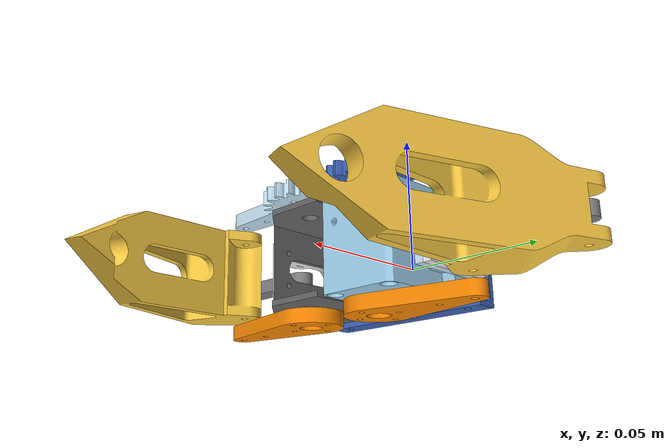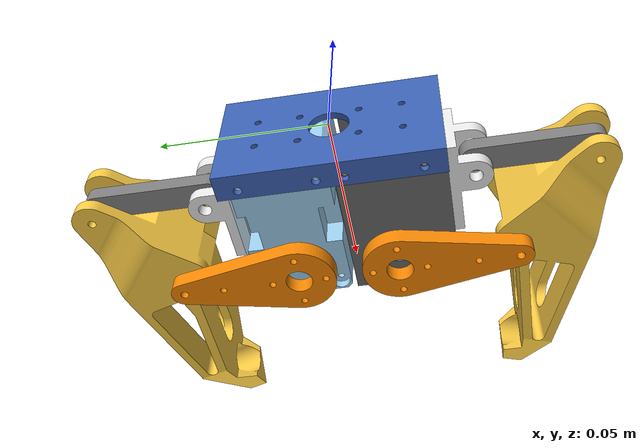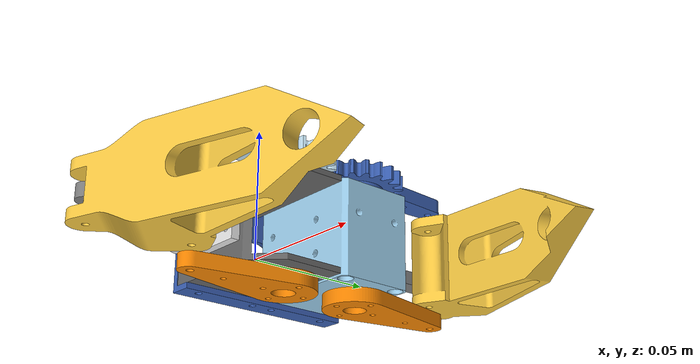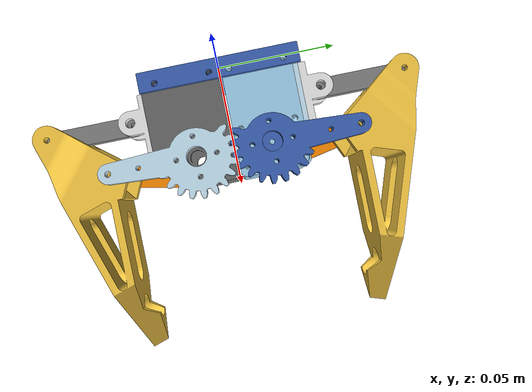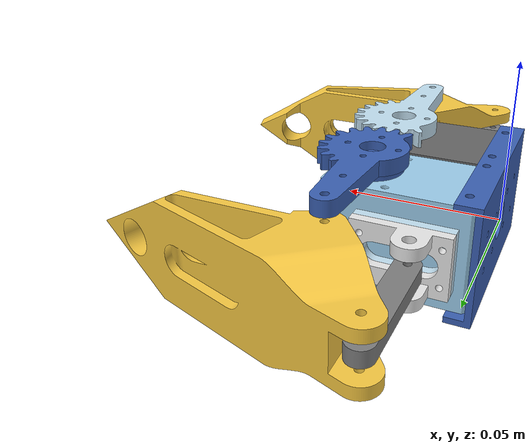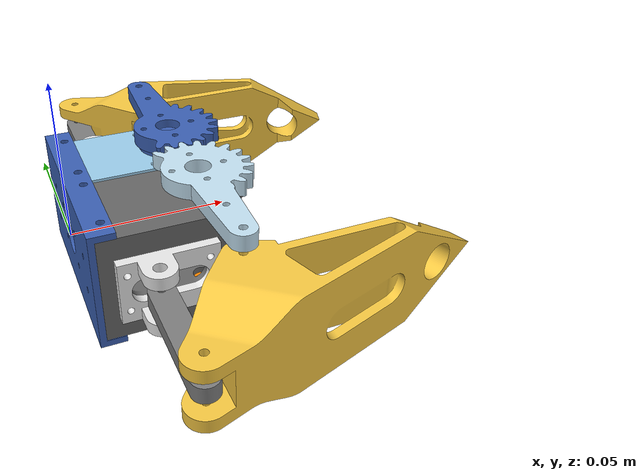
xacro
<?xml version="1.0"?>
<robot name="gripper_stationary" xmlns:xacro="http://www.ros.org/wiki/xacro">
  <xacro:arg name="namespace" default="my_gripper" />

  <xacro:include filename="$(find gripper_description)/urdf/gripper.reusable.xacro" />
  <xacro:mk_parallel_gripper ns="$(arg namespace)" />

  <xacro:include filename="$(find gripper_gazebo)/sdf/gripper_joints_for_sim.reusable.gazebo" />
  <xacro:mk_parallel_gripper_gz_4bar ns="$(arg namespace)" />
  <xacro:mk_parallel_gripper_gz_gearbox_coupling ns="$(arg namespace)" />
  <xacro:gripper_friction_lining ns="$(arg namespace)" prefix="lhs" />
  <xacro:gripper_friction_lining ns="$(arg namespace)" prefix="rhs" />

  <gazebo>
    <plugin name="gazebo_ros_control" filename="libgazebo_ros_control.so">
      <robotNamespace>$(arg namespace)</robotNamespace>
    </plugin>
    <self_collide>true</self_collide>

    <!-- https://answers.ros.org/question/393006/urdf-link-not-properly-fixed-to-world/ -->
    <!-- but it really doesn't work if I apply namespace to the spawner node...??? -->
    <!-- Somehow I discovered the soln below... -->
    <link name="/world" />
    <joint name="$(arg namespace)/gripper2parent" type="fixed">
      <!--this is not urdf any more!-->
      <parent>world</parent>
      <child>$(arg namespace)/base_link</child>
      <!-- specify it in the spawner instead! -->
    </joint>
  </gazebo>
</robot>

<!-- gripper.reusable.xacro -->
<robot name="parallel_link_gripper" xmlns:xacro="http://www.ros.org/wiki/xacro">
  <xacro:macro name="mk_parallel_gripper" params="ns">
    <link name="${ns}/base_link" />
    <joint name="${ns}/base_link_to_base" type="fixed">
      <parent link="${ns}/base_link" />
      <child link="${ns}/body" />
      <origin rpy="0.0 0 0" xyz="0 0 0" />
    </joint>
    <link name="${ns}/body">
      <visual>
        <origin xyz="0.002 2.84109e-20 -0.017" rpy="4.43272e-17 9.56494e-30 -6.02851e-29" />
        <geometry>
          <mesh filename="package://gripper_description/mesh/gripper_mount__list_gggmxkb4ygsnke_default.stl" />
        </geometry>
        <material name="gripper_mount__list_gggmxkb4ygsnke_default_material">
          <color rgba="0.231373 0.380392 0.705882 1.0" />
        </material>
      </visual>
      <collision>
        <origin xyz="0.0205 2.84109e-20 -6.93889e-18" rpy="4.43272e-17 9.56494e-30 -6.02851e-29" />
        <geometry>
          <box size="0.041 0.066 0.04" />
        </geometry>
      </collision>
      <collision>
        <origin xyz="0.045 2.84109e-20 -6.93889e-18" rpy="4.43272e-17 9.56494e-30 -6.02851e-29" />
        <geometry>
          <box size="0.008 0.056 0.04" />
        </geometry>
      </collision>
      <visual>
        <origin xyz="0.002 1.04368e-17 -0.017" rpy="2.72994e-16 3.14417e-16 -6.18698e-29" />
        <geometry>
          <mesh filename="package://gripper_description/mesh/gripper_x430_shell_rhs__list_gggmxkb4ygsnke_default.stl" />
        </geometry>
        <material name="gripper_x430_shell_rhs__list_gggmxkb4ygsnke_default_material">
          <color rgba="0.4 0.4 0.4 1.0" />
        </material>
      </visual>
      <visual>
        <origin xyz="0.002 1.73756e-17 -0.017" rpy="2.72994e-16 3.14417e-16 -6.18698e-29" />
        <geometry>
          <mesh filename="package://gripper_description/mesh/gripper_bracket_rhs__list_gggmxkb4ygsnke_default.stl" />
        </geometry>
        <material name="gripper_bracket_rhs__list_gggmxkb4ygsnke_default_material">
          <color rgba="0.917647 0.917647 0.917647 1.0" />
        </material>
      </visual>
      <collision>
        <origin xyz="0.0215 -0.034 0" rpy="2.72994e-16 3.14417e-16 -6.18698e-29" />
        <geometry>
          <box size="0.03 0.003 0.02" />
        </geometry>
      </collision>
      <collision>
        <origin xyz="0.0173 -0.04 0" rpy="2.72994e-16 3.14417e-16 -6.18698e-29" />
        <geometry>
          <cylinder length="0.02" radius="0.005" />
        </geometry>
      </collision>
      <visual>
        <origin xyz="0.03725 0.015 0.019" rpy="-4.91725e-16 1.98363e-14 -1.5708" />
        <geometry>
          <mesh filename="package://gripper_description/mesh/dynamixel_casing__list_ndk53xfpevccij_default.stl" />
        </geometry>
        <material name="dynamixel_casing__list_ndk53xfpevccij_default_material">
          <color rgba="0.615686 0.811765 0.929412 1.0" />
        </material>
      </visual>
      <visual>
        <origin xyz="0.002 0.0615 -0.017" rpy="2.72994e-16 3.71583e-16 7.45931e-17" />
        <geometry>
          <mesh filename="package://gripper_description/mesh/gripper_bracket_pad__list_gggmxkb4ygsnke_default.stl" />
        </geometry>
        <material name="gripper_bracket_pad__list_gggmxkb4ygsnke_default_material">
          <color rgba="0.768627 0.886275 0.952941 1.0" />
        </material>
      </visual>
      <collision>
        <origin xyz="0.0215 0.0307 3.81639e-17" rpy="2.72994e-16 3.71583e-16 7.45931e-17" />
        <geometry>
          <box size="0.03 0.003 0.02" />
        </geometry>
      </collision>
      <visual>
        <origin xyz="0.002 -1.8235e-17 0.017" rpy="-3.14159 3.14417e-16 5.37331e-16" />
        <geometry>
          <mesh filename="package://gripper_description/mesh/gripper_bracket_rhs__list_gggmxkb4ygsnke_default.stl" />
        </geometry>
        <material name="gripper_bracket_rhs__list_gggmxkb4ygsnke_default_material">
          <color rgba="0.917647 0.917647 0.917647 1.0" />
        </material>
      </visual>
      <collision>
        <origin xyz="0.0215 0.034 -1.25247e-15" rpy="-3.14159 3.14417e-16 5.37331e-16" />
        <geometry>
          <box size="0.03 0.003 0.02" />
        </geometry>
      </collision>
      <collision>
        <origin xyz="0.0173 0.04 -1.249e-15" rpy="-3.14159 3.14417e-16 5.37331e-16" />
        <geometry>
          <cylinder length="0.02" radius="0.005" />
        </geometry>
      </collision>
      <inertial>
        <origin xyz="0.0224723 0.00874655 0.000222665" rpy="0 0 0" />
        <mass value="0.157422" />
        <inertia ixx="6.18655e-05" ixy="-4.90692e-06" ixz="1.13998e-08" iyy="5.05121e-05" iyz="-2.19198e-07" izz="7.60343e-05" />
      </inertial>
    </link>
    <link name="${ns}/lhs_inner_beam">
      <visual>
        <origin xyz="6.93889e-18 0.015 -0.017" rpy="1.32156e-16 -3.87474e-17 3.14159" />
        <geometry>
          <mesh filename="package://gripper_description/mesh/rod_inner_lhs_top.stl" />
        </geometry>
        <material name="rod_inner_lhs_top_material">
          <color rgba="0.231373 0.380392 0.705882 1.0" />
        </material>
      </visual>
      <collision>
        <origin xyz="2.35963e-18 1.73472e-18 0.0045" rpy="1.32156e-16 -3.87474e-17 3.14159" />
        <geometry>
          <cylinder length="0.005" radius="0.013" />
        </geometry>
      </collision>
      <collision>
        <origin xyz="-3.95477e-18 -0.0175 0.0045" rpy="1.32156e-16 -3.87474e-17 3.14159" />
        <geometry>
          <box size="0.01 0.035 0.005" />
        </geometry>
      </collision>
      <visual>
        <origin xyz="1.38778e-17 0.015 -0.024" rpy="-1.46561e-16 3.87474e-17 -4.71845e-16" />
        <geometry>
          <mesh filename="package://gripper_description/mesh/rod_inner_bottom.stl" />
        </geometry>
        <material name="rod_inner_bottom_material">
          <color rgba="0.972549 0.529412 0.00392157 1.0" />
        </material>
      </visual>
      <collision>
        <origin xyz="-3.21799e-18 -0.02 -0.039" rpy="-1.46561e-16 3.87474e-17 -4.71845e-16" />
        <geometry>
          <box size="0.012 0.028 0.005" />
        </geometry>
      </collision>
      <collision>
        <origin xyz="6.2189e-18 -5.20417e-18 -0.039" rpy="1.46561e-16 3.87474e-17 -4.71845e-16" />
        <geometry>
          <cylinder length="0.005" radius="0.011" />
        </geometry>
      </collision>
      <visual>
        <origin xyz="0 0 0.002" rpy="0 -0 -2.31702e-29" />
        <geometry>
          <mesh filename="package://gripper_description/mesh/dynamixel_horn__list_ndk53xfpevccij_default.stl" />
        </geometry>
        <material name="dynamixel_horn__list_ndk53xfpevccij_default_material">
          <color rgba="0.231373 0.380392 0.705882 1.0" />
        </material>
      </visual>
      <inertial>
        <origin xyz="-0.000694637 -0.00752629 -0.013178" rpy="0 0 0" />
        <mass value="0.00897747" />
        <inertia ixx="5.34685e-06" ixy="4.25659e-08" ixz="1.10241e-07" iyy="4.1093e-06" iyz="-5.49535e-07" izz="1.77758e-06" />
      </inertial>
    </link>
    <link name="${ns}/lhs_claw">
      <visual>
        <origin xyz="0 -0.006 -1.97215e-31" rpy="0 -0 2.01638e-30" />
        <geometry>
          <mesh filename="package://gripper_description/mesh/jaw_plate.stl" />
        </geometry>
        <material name="jaw_plate_material">
          <color rgba="0.980392 0.796078 0.262745 1.0" />
        </material>
      </visual>
      <collision>
        <origin xyz="0 -0.006 -1.97215e-31" rpy="0 -0 2.01638e-30" />
        <geometry>
          <mesh filename="package://gripper_description/mesh/jaw_plate.stl" />
        </geometry>
        <material name="jaw_plate_material">
          <color rgba="0.980392 0.796078 0.262745 1.0" />
        </material>
      </collision>
      <inertial>
        <origin xyz="0.00954335 0.0109092 -3.55182e-09" rpy="0 0 0" />
        <mass value="0.0706194" />
        <inertia ixx="1.06828e-05" ixy="6.2682e-06" ixz="7.52244e-13" iyy="3.9212e-05" iyz="1.29448e-11" izz="3.75191e-05" />
      </inertial>
    </link>
    <joint name="${ns}/lhs_j3" type="continuous">
      <origin xyz="-1.38778e-17 -0.035 -0.017" rpy="1.32156e-16 -3.87474e-17 3.14159" />
      <parent link="${ns}/lhs_inner_beam" />
      <child link="${ns}/lhs_claw" />
      <axis xyz="0 0 1" />
      <limit effort="1" velocity="20" />
      <joint_properties friction="0.0" />
      <mimic joint="${ns}/lhs_j1" multiplier="-1" offset="0" />
    </joint>
    <joint name="${ns}/lhs_j1" type="revolute">
      <origin xyz="0.03725 0.015 0.017" rpy="-1.9792e-14 -6.27246e-15 -3.14159" />
      <parent link="${ns}/base_link" />
      <child link="${ns}/lhs_inner_beam" />
      <axis xyz="0 0 1" />
      <limit effort="1" velocity="20" lower="-1.5708" upper="0.15708" />
      <joint_properties friction="0.0" />
    </joint>
    <link name="${ns}/lhs_outer_beam">
      <visual>
        <origin xyz="0.02 0.025 0.0025" rpy="-3.14159 -1.88544e-31 3.5742e-29" />
        <geometry>
          <mesh filename="package://gripper_description/mesh/rod_outer.stl" />
        </geometry>
        <material name="rod_outer_material">
          <color rgba="0.498039 0.498039 0.498039 1.0" />
        </material>
      </visual>
      <collision>
        <origin xyz="3.46945e-18 -0.015 0" rpy="-3.14159 -1.88544e-31 3.5742e-29" />
        <geometry>
          <box size="0.01 0.038 0.005" />
        </geometry>
      </collision>
      <inertial>
        <origin xyz="3.46945e-18 -0.0175 0" rpy="0 0 0" />
        <mass value="0.00168556" />
        <inertia ixx="2.35764e-07" ixy="8.3159e-36" ixz="9.11279e-38" iyy="1.24039e-08" iyz="-3.0331e-37" izz="2.41145e-07" />
      </inertial>
    </link>
    <joint name="${ns}/lhs_j2" type="continuous">
      <origin xyz="0.01725 0.04 -1.249e-15" rpy="-3.14159 4.40184e-15 7.06094e-13" />
      <parent link="${ns}/base_link" />
      <child link="${ns}/lhs_outer_beam" />
      <axis xyz="0 0 1" />
      <limit effort="1" velocity="20" />
      <joint_properties friction="0.0" />
      <mimic joint="${ns}/lhs_j1" multiplier="-1" offset="0" />
    </joint>
    <link name="${ns}/rhs_inner_beam">
      <visual>
        <origin xyz="-0.015 6.93889e-18 -3.46945e-18" rpy="0 -0 1.5708" />
        <geometry>
          <mesh filename="package://gripper_description/mesh/rod_inner_rhs_top.stl" />
        </geometry>
        <material name="rod_inner_rhs_top_material">
          <color rgba="0.768627 0.886275 0.952941 1.0" />
        </material>
      </visual>
      <collision>
        <origin xyz="0 6.93889e-18 0.0215" rpy="0 -0 1.5708" />
        <geometry>
          <cylinder length="0.005" radius="0.013" />
        </geometry>
      </collision>
      <collision>
        <origin xyz="0.0175 6.93889e-18 0.0215" rpy="0 -0 1.5708" />
        <geometry>
          <box size="0.01 0.035 0.005" />
        </geometry>
      </collision>
      <visual>
        <origin xyz="-0.015 1.38778e-17 -0.007" rpy="3.914e-17 -8.32667e-17 1.5708" />
        <geometry>
          <mesh filename="package://gripper_description/mesh/rod_inner_bottom.stl" />
        </geometry>
        <material name="rod_inner_bottom_material">
          <color rgba="0.972549 0.529412 0.00392157 1.0" />
        </material>
      </visual>
      <collision>
        <origin xyz="0.02 2.08167e-18 -0.022" rpy="3.914e-17 -8.32667e-17 1.5708" />
        <geometry>
          <box size="0.012 0.028 0.005" />
        </geometry>
      </collision>
      <collision>
        <origin xyz="0 7.63278e-18 -0.022" rpy="-3.914e-17 -8.32667e-17 1.5708" />
        <geometry>
          <cylinder length="0.005" radius="0.011" />
        </geometry>
      </collision>
      <inertial>
        <origin xyz="0.00901442 0.000756382 0.000852503" rpy="0 0 0" />
        <mass value="0.00744734" />
        <inertia ixx="3.68765e-06" ixy="4.3779e-08" ixz="3.57846e-07" iyy="4.8283e-06" iyz="-1.16308e-07" izz="1.61067e-06" />
      </inertial>
    </link>
    <link name="${ns}/rhs_claw">
      <visual>
        <origin xyz="-6.93889e-18 -0.006 -4.93038e-32" rpy="0 -0 1.42883e-30" />
        <geometry>
          <mesh filename="package://gripper_description/mesh/jaw_plate.stl" />
        </geometry>
        <material name="jaw_plate_material">
          <color rgba="0.980392 0.796078 0.262745 1.0" />
        </material>
      </visual>
      <collision>
        <origin xyz="-6.93889e-18 -0.006 -4.93038e-32" rpy="0 -0 1.42883e-30" />
        <geometry>
          <mesh filename="package://gripper_description/mesh/jaw_plate.stl" />
        </geometry>
        <material name="jaw_plate_material">
          <color rgba="0.980392 0.796078 0.262745 1.0" />
        </material>
      </collision>
      <inertial>
        <origin xyz="0.00954335 0.0109092 -3.55182e-09" rpy="0 0 0" />
        <mass value="0.0706194" />
        <inertia ixx="1.06828e-05" ixy="6.2682e-06" ixz="7.52244e-13" iyy="3.9212e-05" iyz="1.29448e-11" izz="3.75191e-05" />
      </inertial>
    </link>
    <joint name="${ns}/rhs_j3" type="continuous">
      <origin xyz="0.035 6.93889e-18 -3.46945e-18" rpy="-3.14159 -0 1.5708" />
      <parent link="${ns}/rhs_inner_beam" />
      <child link="${ns}/rhs_claw" />
      <axis xyz="0 0 1" />
      <limit effort="1" velocity="20" />
      <joint_properties friction="0.0" />
      <mimic joint="${ns}/lhs_j1" multiplier="-1" offset="0" />
    </joint>
    <joint name="${ns}/rhs_j1" type="continuous">
      <origin xyz="0.03725 -0.015 8.67246e-31" rpy="-6.24854e-15 1.67434e-16 -1.5708" />
      <parent link="${ns}/base_link" />
      <child link="${ns}/rhs_inner_beam" />
      <axis xyz="0 0 1" />
      <limit effort="1" velocity="20" lower="-0.174533" upper="1.5708" />
      <joint_properties friction="0.0" />
      <mimic joint="${ns}/lhs_j1" multiplier="-1" offset="0" />
    </joint>
    <link name="${ns}/rhs_outer_beam">
      <visual>
        <origin xyz="0.02 0.06 0.0025" rpy="3.14159 -0 1.42883e-30" />
        <geometry>
          <mesh filename="package://gripper_description/mesh/rod_outer.stl" />
        </geometry>
        <material name="rod_outer_material">
          <color rgba="0.498039 0.498039 0.498039 1.0" />
        </material>
      </visual>
      <collision>
        <origin xyz="1.04083e-17 0.02 4.33681e-19" rpy="3.14159 -0 1.42883e-30" />
        <geometry>
          <box size="0.01 0.038 0.005" />
        </geometry>
      </collision>
      <inertial>
        <origin xyz="1.04083e-17 0.0175 4.33681e-19" rpy="0 0 0" />
        <mass value="0.00168556" />
        <inertia ixx="2.35764e-07" ixy="3.5459e-37" ixz="0" iyy="1.24039e-08" iyz="0" izz="2.41145e-07" />
      </inertial>
    </link>
    <joint name="${ns}/rhs_j2" type="continuous">
      <origin xyz="0.01725 -0.04 -3.46945e-18" rpy="-3.14159 6.24854e-15 -5.22162e-14" />
      <parent link="${ns}/base_link" />
      <child link="${ns}/rhs_outer_beam" />
      <axis xyz="0 0 1" />
      <limit effort="1" velocity="20" />
      <joint_properties friction="0.0" />
      <mimic joint="${ns}/lhs_j1" multiplier="1" offset="0" />
    </joint>
    <transmission name="${ns}/lhs_j1_transmission">
      <type>transmission_interface/SimpleTransmission</type>
      <joint name="${ns}/lhs_j1">
        <hardwareInterface>hardware_interface/PositionJointInterface</hardwareInterface>
      </joint>
      <actuator name="${ns}/lhs_j1_actuator">
        <mechanicalReduction>1</mechanicalReduction>
      </actuator>
    </transmission>
  </xacro:macro>
</robot>
